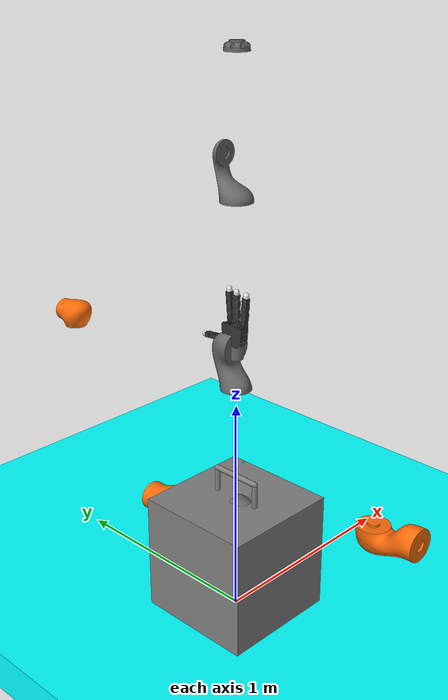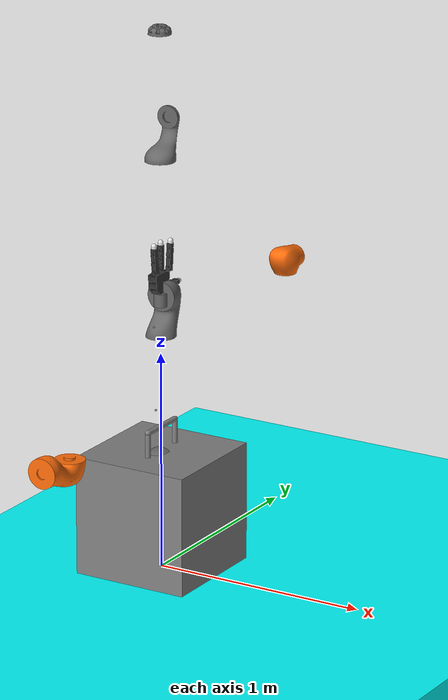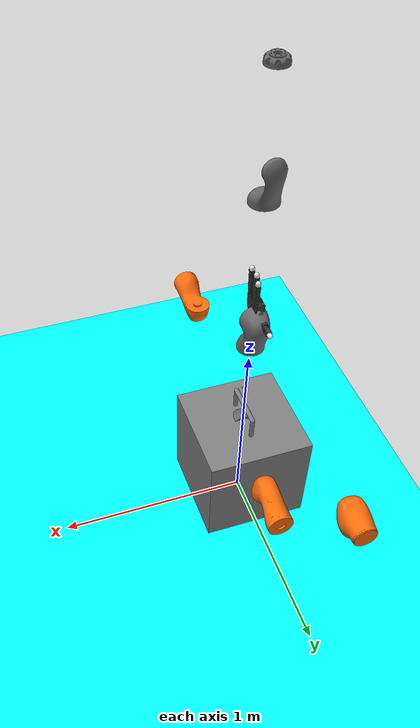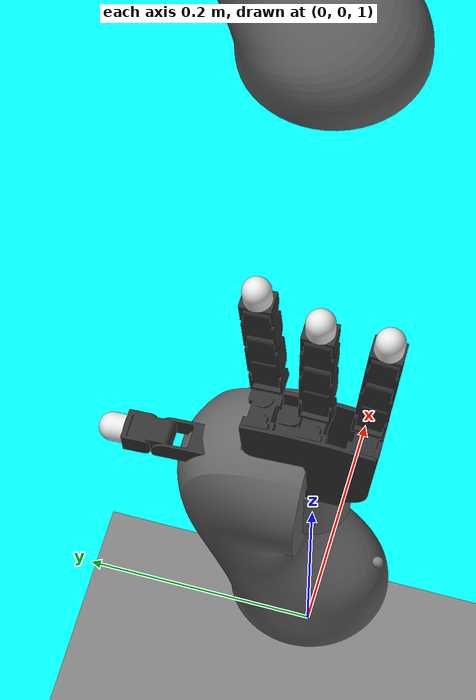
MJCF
<mujoco model="bimanual_allegro">
<!-- Copyright (c) 2023 Boston Dynamics AI Institute LLC. All rights reserved. -->

  <compiler angle="radian" meshdir="../../../meshes/" autolimits="true"/>
  <option timestep="0.01"/>

  <default>
    <default class="corner_contact">
      <geom type="sphere" size="1e-7" friction="0.5" priority="3"/>
    </default>
    <default class="allegro_right">
      <joint axis="0 1 0" damping=".1"/>
      <position kp="0.5" forcerange="-0.1 0.1"/>
      <geom density="800"/>

      <default class="allegro_right_visual">
        <geom type="mesh" contype="0" conaffinity="0" group="2" material="black"/>
        <default class="palm_visual">
          <geom mesh="base_link"/>
        </default>
        <default class="base_visual">
          <geom mesh="link_0.0"/>
        </default>
        <default class="proximal_visual">
          <geom mesh="link_1.0"/>
        </default>
        <default class="medial_visual">
          <geom mesh="link_2.0"/>
        </default>
        <default class="distal_visual">
          <geom mesh="link_3.0"/>
        </default>
        <default class="fingertip_visual">
          <geom pos="0 0 0.0267" material="white" mesh="link_3.0_tip"/>
        </default>
        <default class="thumbtip_visual">
          <geom pos="0 0 0.0423" material="white" mesh="link_15.0_tip"/>
        </default>
      </default>

      <default class="collision">
        <geom group="3" friction="0.50" type="box" mass="0"
        solimp="0.9 0.95 0.001 0.5 2" solref="0.02 1"/>
        <default class="palm_collision">
          <geom size="0.0204 0.0565 0.0475" pos="-0.0093 0 -0.0475"/>
        </default>
        <default class="base_collision">
          <geom size="0.0098 0.01375 0.0082" pos="0 0 0.0082"/>
          <default class="thumb_base_collision_0">
            <geom size="0.0179 0.017 0.011" pos="-0.0179 0.009 0.003"/>
          </default>
          <default class="thumb_base_collision_1">
            <geom size="0.0179 0.00980 0.012" pos="-0.0179 0.005 0.0255"/>
          </default>
          <default class="thumb_base_collision_2">
            <geom type="cylinder" size="0.007 0.0179" quat="1 0 1 0" pos="-0.0179 0.019 0.014"/>
          </default>
        </default>
        <default class="proximal_collision">
          <geom size="0.0098 0.01375 0.027" pos="0 0 0.027"/>
          <default class="thumb_proximal_collision">
            <geom size="0.0098 0.01375 0.00885" pos="0 0 0.00885"/>
          </default>
        </default>
        <default class="medial_collision">
          <geom size="0.0098 0.01375 0.0192" pos="0 0 0.0192"/>
          <default class="thumb_medial_collision">
            <geom size="0.0098 0.01375 0.0257" pos="0 0 0.0257"/>
          </default>
        </default>
        <default class="distal_collision">
          <geom size="0.0098 0.01375 0.008" pos="0 0 0.008"/>
          <default class="thumb_distal_collision">
            <geom size="0.0098 0.01375 0.0157" pos="0 0 0.0157"/>
          </default>
        </default>
        <default class="fingertip_collision">
          <geom type="capsule" size="0.012 0.01" pos="0 0 0.019"/>
          <default class="thumbtip_collision">
            <geom type="capsule" size="0.012 0.008" pos="0 0 0.035"/>
          </default>
        </default>
      </default>

      <default class="palm">
        <joint damping="1.0" range="-0.25 0.25"/>
        <position kp="0.5" ctrlrange="-0.25 0.25" forcerange="-1 1"/>
      </default>
      <default class="base">
        <joint axis="0 0 1" range="-0.47 0.47"/>
        <position ctrlrange="-0.47 0.47"/>
      </default>
      <default class="proximal">
        <joint range="-0.196 1.61"/>
        <position ctrlrange="-0.196 1.61"/>
      </default>
      <default class="medial">
        <joint range="-0.174 1.709"/>
        <position ctrlrange="-0.174 1.709"/>
      </default>
      <default class="distal">
        <joint range="-0.227 1.618"/>
        <position ctrlrange="-0.227 1.618"/>
      </default>
      <default class="thumb_base">
        <joint axis="-1 0 0" range="0.263 1.396"/>
        <position ctrlrange="0.263 1.396"/>
      </default>
      <default class="thumb_proximal">
        <joint axis="0 0 1" range="-0.105 1.163"/>
        <position ctrlrange="-0.105 1.163"/>
      </default>
      <default class="thumb_medial">
        <joint range="-0.189 1.644"/>
        <position ctrlrange="-0.189 1.644"/>
      </default>
      <default class="thumb_distal">
        <joint range="-0.162 1.719"/>
        <position ctrlrange="-0.162 1.719"/>
      </default>
    </default>

    <default class="iiwa">
      <!-- the margin gap parameters allow for collision detection to be triggered all the time -->
      <geom priority="2" friction="0.45 .01 .003" group="3" solref=".02 1" margin="0.0" gap="0.0"/>
      <material specular="0.5" shininess="0.25"/>
      <joint axis="0 0 1"  damping="3.0"/>
      <position kp="2.5" ctrlrange="-2.81706 2.81706" forcerange="-1000 1000" />
      <default class="joint1">
        <joint range="-2.96706 2.96706"/>
        <position ctrlrange="-2.81706 2.81706"/>
      </default>
      <default class="joint2">
        <joint range="-2.0944 2.0944"/>
        <position ctrlrange="-1.9444 1.9444"/>
      </default>
      <default class="joint3">
        <joint range="-2.0944 2.0944"/>
        <position ctrlrange="-1.9444 1.9444"/>
      </default>
      <default class="joint4">
        <joint range="-2.0944 2.0944"/>
        <position ctrlrange="-1.9444 1.9444"/>
      </default>
      <default class="joint5">
        <joint range="-3.05433 3.05433"/>
        <position ctrlrange="-2.90433 2.90433"/>
      </default>
      <default class="iiwa_visual">
        <geom type="mesh" group="2" material="gray"/>
      </default>
    </default>
  </default>

  <asset>
    <texture name="blue_grid" type="2d" builtin="checker" rgb1=".02 .14 .44" rgb2=".27 .55 1" width="300" height="300" mark="edge" markrgb="1 1 1"/>
    <material name="blue_grid" texture="blue_grid" texrepeat="1 1" texuniform="true" reflectance=".2"/>
    <material class="iiwa" name="gray" rgba="0.4 0.4 0.4 1"/>
    <material class="iiwa" name="orange" rgba="1 0.423529 0.0392157 1"/>
    <material name="black" rgba="0.2 0.2 0.2 1"/>
    <material name="white" rgba="0.9 0.9 0.9 1"/>

    <mesh name="link_0" file="iiwa7/visual/link_0.obj"/>
    <mesh name="link_1" file="iiwa7/visual/link_1.obj"/>
    <mesh name="link_2" file="iiwa7/visual/link_2.obj"/>
    <mesh name="link_3" file="iiwa7/visual/link_3.obj"/>
    <mesh name="link_4" file="iiwa7/visual/link_4.obj"/>
    <mesh name="link_5" file="iiwa7/visual/link_5.obj"/>
    <mesh name="link_6" file="iiwa7/visual/link_6.obj"/>
    <mesh name="link_7" file="iiwa7/visual/link_7.obj"/>

    <mesh name="base_link" file="allegro/visual/base_link.obj"/>
    <mesh name="link_0.0" file="allegro/visual/link_0.0.obj"/>
    <mesh name="link_1.0" file="allegro/visual/link_1.0.obj"/>
    <mesh name="link_2.0" file="allegro/visual/link_2.0.obj"/>
    <mesh name="link_3.0_tip" file="allegro/visual/link_3.0_tip.obj"/>
    <mesh name="link_3.0" file="allegro/visual/link_3.0.obj"/>
    <mesh name="link_4.0" file="allegro/visual/link_4.0.obj"/>
    <mesh name="link_12.0_right" file="allegro/visual/link_12.0_right.obj"/>
    <mesh name="link_13.0" file="allegro/visual/link_13.0.obj"/>
    <mesh name="link_14.0" file="allegro/visual/link_14.0.obj"/>
    <mesh name="link_15.0_tip" file="allegro/visual/link_15.0_tip.obj"/>
    <mesh name="link_15.0" file="allegro/visual/link_15.0.obj"/>

  </asset>

  <worldbody>
    <site name="world"/>
    <body>
      <geom mass="0" name="floor" pos="0 0 -0.10" condim="3" size="10.0 10.0 0.10" rgba="0 1 1 1" type="box" material="blue_grid"/>
    </body>

    <include file="../../components/objects/box_with_handle.xml" />

    <light name="top" pos="0 0 2" mode="trackcom"/>

    <body name="base_right" pos="0 0 0" childclass="iiwa">
      <inertial mass="3.863" pos="-0.013 0 0.07" diaginertia="0.0141 0.0171 0.0178"/>
      <geom class="iiwa_visual" mesh="link_0"/>
      <body name="link1_right" gravcomp="1" pos="0 0 0.1575">
        <inertial mass="2.7025" pos="0 -0.0347 0.113" diaginertia="0.0171 0.0163 0.006"/>
        <joint name="joint1_right" class="joint1"/>
        <geom class="iiwa_visual" mesh="link_1"/>
        <site pos="0 0 -0.0005" name="site_link1_right"/>
        <body name="link2_right" gravcomp="1" pos="0 0 0.1830" quat="0 0 1 1">
          <inertial mass="2.7258" pos="0 0.0668 0.0344" diaginertia="0.0170 0.0162 0.0061" quat="0 0 1 1"/>
          <joint name="joint2_right" class="joint2"/>
          <geom class="iiwa_visual" material="orange" mesh="link_2"/>
          <site pos="0 0 -0.01" name="site_link2_right"/>
          <body name="link3_right" gravcomp="1" pos="0 0.1845 0" quat="0 0 1 1">
            <inertial mass="3.175" pos="0 0.0296 0.1265" diaginertia="0.025 0.0238 0.0076"/>
            <joint name="joint3_right" class="joint1"/>
            <geom class="iiwa_visual" mesh="link_3"/>
            <site pos="0 0 0.0355" name="site_link3_right"/>
            <body name="link4_right" gravcomp="1" pos="0 0 0.2155" quat="1 1 0 0">
              <inertial mass="2.73" pos="0 0.067 0.034" diaginertia="0.017 0.0162 0.0061" quat="1 1 0 0"/>
              <joint name="joint4_right" class="joint3"/>
              <geom class="iiwa_visual" material="orange" mesh="link_4"/>
              <site pos="0 0.01 0.046" name="site_link4_right"/>
              <body name="link5_right" gravcomp="1" pos="0 0.1845 0" quat="0 0 1 1">
                <inertial mass="1.69" pos="0.0001 0.021 0.076" diaginertia="0.01 0.0087 0.00449"/>
                <joint name="joint5_right" class="joint1"/>
                <geom class="iiwa_visual" mesh="link_5"/>
                <site pos="0 0 0.0335" name="site_link5_right"/>
                <body name="link6_right" gravcomp="1" pos="0 0 0.2155" quat="1 1 0 0">
                  <inertial mass="1.8" pos="0 0.0026 0.0005" diaginertia="0.0051 0.0047 0.0035" quat="1 1 0 0"/>
                  <joint name="joint6_right" class="joint4"/>
                  <geom class="iiwa_visual" pos="0 0 -0.0607" material="orange" mesh="link_6"/>
                  <site pos="0 0 -0.059" name="site_link6_right"/>
                  <body name="link7_right" gravcomp="1" pos="0 0.081 0" quat="0 0 1 1">
                    <inertial mass="0.4" pos="0 0 0.0294" diaginertia="0.0004 0.0004 0.0005"/>
                    <joint name="joint7_right" class="joint5"/>
                    <geom class="iiwa_visual" mesh="link_7"/>
                    <geom class="iiwa_visual" type="cylinder" material="gray" size="0.0315 0.0305" pos="0 0 0.0305"/>
                    <site pos="0 0 0.001" name="site_link7_right"/>
                    <body name="palm" pos="0 0 0.155" childclass="allegro_right">
                      <inertial mass="0.4154" pos="0 0 0.0475" diaginertia="1e-4 1e-4 1e-4"/>
                      <geom class="palm_visual" mesh="base_link"/>
                      <geom class="palm_collision"/>
                      <!-- First finger -->
                      <body name="ff_base" pos="0.016 0.0435 -0.001542" quat="0.999048 -0.0436194 0 0">
                        <joint name="ffj0" class="base"/>
                        <geom class="base_visual"/>
                        <geom class="base_collision"/>
                        <body name="ff_proximal" pos="0 0 0.0164">
                          <joint name="ffj1" class="proximal"/>
                          <geom class="proximal_visual"/>
                          <geom class="proximal_collision"/>
                          <body name="ff_medial" pos="0 0 0.054">
                            <joint name="ffj2" class="medial"/>
                            <geom class="medial_visual"/>
                            <geom class="medial_collision"/>
                            <body name="ff_distal" pos="0 0 0.0384">
                              <joint name="ffj3" class="distal"/>
                              <geom class="distal_visual"/>
                              <geom class="distal_collision"/>
                              <body name="ff_tip">
                                <geom class="fingertip_visual"/>
                                <geom class="fingertip_collision"/>
                                <site pos="0 0 0" name="site_ff_tip"/>
                              </body>
                            </body>
                          </body>
                        </body>
                      </body>
                      <!-- Middle finger -->
                      <body name="mf_base" pos="0 0 0.0007">
                        <joint name="mfj0" class="base"/>
                        <geom class="base_visual"/>
                        <geom class="base_collision"/>
                        <body name="mf_proximal" pos="0 0 0.0164">
                          <joint name="mfj1" class="proximal"/>
                          <geom class="proximal_visual"/>
                          <geom class="proximal_collision"/>
                          <body name="mf_medial" pos="0 0 0.054">
                            <joint name="mfj2" class="medial"/>
                            <geom class="medial_visual"/>
                            <geom class="medial_collision"/>
                            <body name="mf_distal" pos="0 0 0.0384">
                              <joint name="mfj3" class="distal"/>
                              <geom class="distal_visual"/>
                              <geom class="distal_collision"/>
                              <body name="mf_tip">
                                <geom class="fingertip_visual"/>
                                <geom class="fingertip_collision"/>
                                <site pos="0 0 0" name="site_mf_tip"/>
                              </body>
                            </body>
                          </body>
                        </body>
                      </body>
                      <!-- Ring finger -->
                      <body name="rf_base" pos="0 -0.0435 -0.001542" quat="0.999048 0.0436194 0 0">
                        <joint name="rfj0" class="base"/>
                        <geom class="base_visual"/>
                        <geom class="base_collision"/>
                        <body name="rf_proximal" pos="0 0 0.0164">
                          <joint name="rfj1" class="proximal"/>
                          <geom class="proximal_visual"/>
                          <geom class="proximal_collision"/>
                          <body name="rf_medial" pos="0 0 0.054">
                            <joint name="rfj2" class="medial"/>
                            <geom class="medial_visual"/>
                            <geom class="medial_collision"/>
                            <body name="rf_distal" pos="0 0 0.0384">
                              <joint name="rfj3" class="distal"/>
                              <geom class="distal_visual"/>
                              <geom class="distal_collision"/>
                              <body name="rf_tip">
                                <geom class="fingertip_visual"/>
                                <geom class="fingertip_collision"/>
                                <site pos="0 0 0" name="site_rf_tip"/>
                              </body>
                            </body>
                          </body>
                        </body>
                      </body>
                      <!-- Thumb -->
                      <body name="th_base" pos="-0.0182 0.019333 -0.045987" quat="0.477714 -0.521334 -0.521334 -0.477714">
                        <joint name="thj0" class="thumb_base"/>
                        <geom class="allegro_right_visual" mesh="link_12.0_right"/>
                        <geom class="thumb_base_collision_0"/>
                        <geom class="thumb_base_collision_1"/>
                        <geom class="thumb_base_collision_2"/>
                        <body name="th_proximal" pos="-0.027 0.005 0.0399">
                          <joint name="thj1" class="thumb_proximal"/>
                          <geom class="allegro_right_visual" mesh="link_13.0"/>
                          <geom class="thumb_proximal_collision"/>
                          <body name="th_medial" pos="0 0 0.0177">
                            <joint name="thj2" class="thumb_medial"/>
                            <geom class="allegro_right_visual" mesh="link_14.0"/>
                            <geom class="thumb_medial_collision"/>
                            <body name="th_distal" pos="0 0 0.0514">
                              <joint name="thj3" class="thumb_distal"/>
                              <geom class="allegro_right_visual" mesh="link_15.0"/>
                              <geom class="thumb_distal_collision"/>
                              <body name="th_tip">
                                <geom class="thumbtip_visual"/>
                                <geom class="thumbtip_collision"/>
                                <site pos="0 0 0" name="site_th_tip"/>
                              </body>
                            </body>
                          </body>
                        </body>
                      </body>
                    </body>
                  </body>
                </body>
              </body>
            </body>
          </body>
        </body>
      </body>
    </body>
  </worldbody>

  <contact>
    <exclude body1="base_right" body2="link1_right"/>
    <exclude body1="palm" body2="ff_base"/>
    <exclude body1="palm" body2="mf_base"/>
    <exclude body1="palm" body2="rf_base"/>
    <exclude body1="palm" body2="th_base"/>
    <exclude body1="palm" body2="th_proximal"/>
  </contact>

  <keyframe>
    <!-- mujoco q = [object_pos, object_quat, arm_pos, hand_pos] -->
    <key name="home" qpos="0 0 0.30   1 0 0 0   0 0 0 0 0 0 0  0 0 0 0 0 0 0 0 0 0 0 0 0 0 0 0" />
  </keyframe>

  <sensor>
    <framepos name="sensor_link1_right" objtype="site" objname="site_link1_right" reftype="site" refname="site_object" />
    <framepos name="sensor_link2_right" objtype="site" objname="site_link2_right" reftype="site" refname="site_object" />
    <framepos name="sensor_link3_right" objtype="site" objname="site_link3_right" reftype="site" refname="site_object" />
    <framepos name="sensor_link4_right" objtype="site" objname="site_link4_right" reftype="site" refname="site_object" />
    <framepos name="sensor_link5_right" objtype="site" objname="site_link5_right" reftype="site" refname="site_object" />
    <framepos name="sensor_link6_right" objtype="site" objname="site_link6_right" reftype="site" refname="site_object" />
    <framepos name="sensor_link7_right" objtype="site" objname="site_link7_right" reftype="site" refname="site_object" />
    <framepos name="sensor_ff_tip" objtype="site" objname="site_ff_tip" reftype="site" refname="site_object"/>
    <framepos name="sensor_mf_tip" objtype="site" objname="site_mf_tip" reftype="site" refname="site_object"/>
    <framepos name="sensor_rf_tip" objtype="site" objname="site_rf_tip" reftype="site" refname="site_object"/>
    <framepos name="sensor_th_tip" objtype="site" objname="site_th_tip" reftype="site" refname="site_object"/>
  </sensor>

  <actuator>
    <general name="actuator1_right" joint="joint1_right" class="joint1"/>
    <general name="actuator2_right" joint="joint2_right" class="joint2"/>
    <general name="actuator3_right" joint="joint3_right" class="joint1"/>
    <general name="actuator4_right" joint="joint4_right" class="joint3"/>
    <general name="actuator5_right" joint="joint5_right" class="joint1"/>
    <general name="actuator6_right" joint="joint6_right" class="joint4"/>
    <general name="actuator7_right" joint="joint7_right" class="joint5"/>
    <position name="ffa0" joint="ffj0" class="base"/>
    <position name="ffa1" joint="ffj1" class="proximal"/>
    <position name="ffa2" joint="ffj2" class="medial"/>
    <position name="ffa3" joint="ffj3" class="distal"/>
    <position name="mfa0" joint="mfj0" class="base"/>
    <position name="mfa1" joint="mfj1" class="proximal"/>
    <position name="mfa2" joint="mfj2" class="medial"/>
    <position name="mfa3" joint="mfj3" class="distal"/>
    <position name="rfa0" joint="rfj0" class="base"/>
    <position name="rfa1" joint="rfj1" class="proximal"/>
    <position name="rfa2" joint="rfj2" class="medial"/>
    <position name="rfa3" joint="rfj3" class="distal"/>
    <position name="tha0" joint="thj0" class="thumb_base"/>
    <position name="tha1" joint="thj1" class="thumb_proximal"/>
    <position name="tha2" joint="thj2" class="thumb_medial"/>
    <position name="tha3" joint="thj3" class="thumb_distal"/>
  </actuator>

</mujoco>

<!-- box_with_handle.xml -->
<mujoco model="box_with_handle">
<!-- Copyright (c) 2023 Boston Dynamics AI Institute LLC. All rights reserved. -->
  <body name="box_with_handle" pos="0 0 0.275">
    <joint name="box_with_handle_joint" type="free"/>
    <inertial pos="0 0 0" mass="1.72" diaginertia="0.01 0.01 0.01"/>

    <geom name="box" type="box" size="0.275 0.275 0.275" priority="3"/>
    <geom name="handle_left" type="capsule" size="0.0125 0.05" pos="0 0.1125 0.325" priority="3"/>
    <geom name="handle_right" type="capsule" size="0.0125 0.05" pos="0 -0.1125 0.325" priority="3"/>
    <geom name="handle_top" type="capsule" size="0.0125 0.1125" pos="0 0 0.3875" euler="1.57 0 0" priority="3"/>

    <site name="site_object" pos="0 0 -0.3" size="0.01"/>
  </body>
</mujoco>
